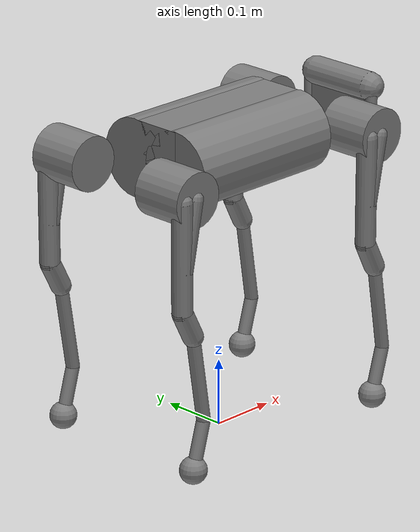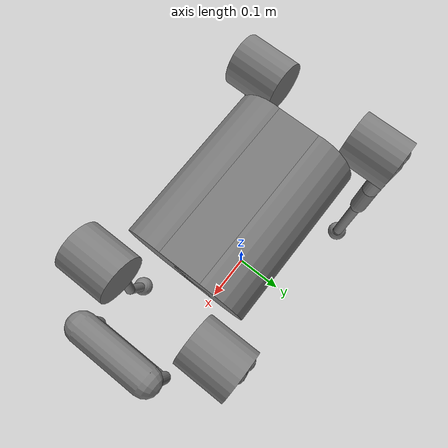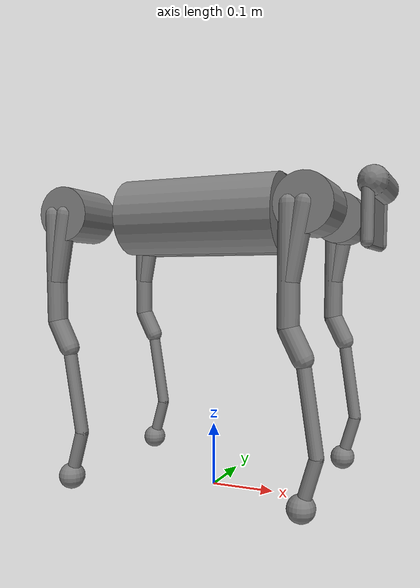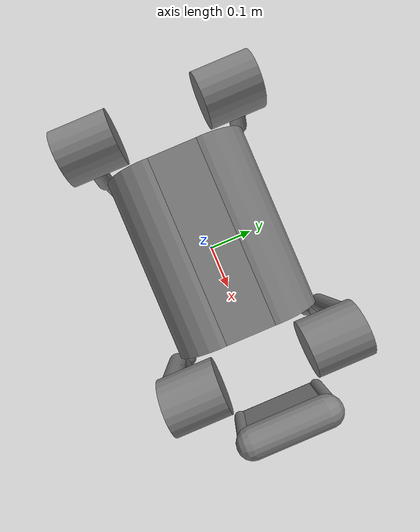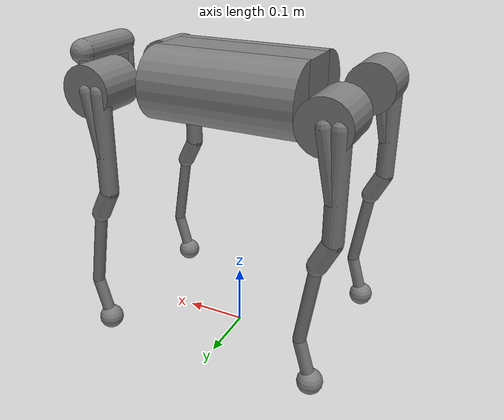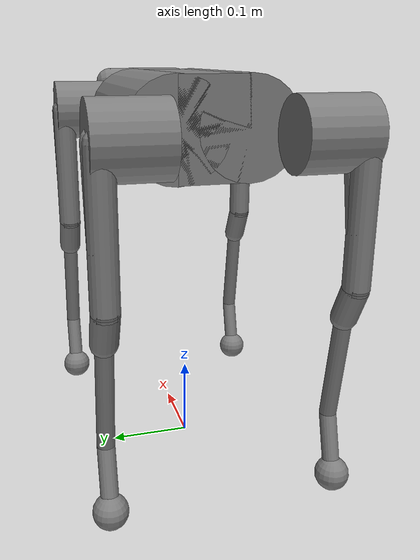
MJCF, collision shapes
<mujoco model="a1">
  <compiler angle="radian" meshdir="assets" texturedir="assets" autolimits="true"/>

  <option cone="elliptic" impratio="100"/>

  <default>
    <default class="a1">
      <geom friction="0.6" margin="0.001"/>
      <joint axis="0 1 0" damping="2" armature="0.01" frictionloss="0.2"/>
      <default class="abduction">
        <joint axis="1 0 0" damping="1" range="-0.802851 0.802851"/>
        <position ctrlrange="-0.802851 0.802851"/>
      </default>
      <default class="hip">
        <joint range="-1.0472 4.18879"/>
        <position ctrlrange="-1.0472 4.18879"/>
      </default>
      <default class="knee">
        <joint range="-2.69653 -0.916298"/>
        <position ctrlrange="-2.69653 -0.916298"/>
      </default>
      <default class="visual">
        <geom type="mesh" contype="0" conaffinity="0" group="2" material="dark"/>
      </default>
      <default class="collision">
        <geom group="3" type="capsule"/>
        <default class="hip_left">
          <geom size="0.04 0.04" quat="1 1 0 0" type="cylinder" pos="0 0.055 0"/>
        </default>
        <default class="hip_right">
          <geom size="0.04 0.04" quat="1 1 0 0" type="cylinder" pos="0 -0.055 0"/>
        </default>
        <default class="thigh1">
          <geom size="0.015" fromto="-0.02 0 0 -0.02 0 -0.16"/>
        </default>
        <default class="thigh2">
          <geom size="0.015" fromto="0 0 0 -0.02 0 -0.1"/>
        </default>
        <default class="thigh3">
          <geom size="0.015" fromto="-0.02 0 -0.16 0 0 -0.2"/>
        </default>
        <default class="calf1">
          <geom size="0.01" fromto="0 0 0 0.02 0 -0.13"/>
        </default>
        <default class="calf2">
          <geom size="0.01" fromto="0.02 0 -0.13 0 0 -0.2"/>
        </default>
        <default class="foot">
          <geom type="sphere" size="0.02" pos="0 0 -0.2" priority="1" solimp="0.015 1 0.02" condim="6"
            friction="0.8 0.02 0.01"/>
        </default>
      </default>
    </default>
  </default>

  <asset>
    <material name="dark" specular="0" shininess="0.25" rgba="0.2 0.2 0.2 1"/>
    <texture type="2d" name="trunk_A1" file="trunk_A1.png"/>
    <material name="carbonfibre" texture="trunk_A1" specular="0" shininess="0.25"/>

    <mesh class="a1" file="calf.obj"/>
    <mesh class="a1" file="hip.obj"/>
    <mesh class="a1" file="thigh.obj"/>
    <mesh class="a1" file="thigh_mirror.obj"/>
    <mesh class="a1" file="trunk.obj"/>
  </asset>

  <worldbody>
    <light name="spotlight" mode="targetbodycom" target="trunk" pos="0 -1 2"/>
    <body name="trunk" pos="0 0 0.43" childclass="a1">
      <freejoint/>
      <inertial mass="4.713" pos="0 0.0041 -0.0005"
        fullinertia="0.0158533 0.0377999 0.0456542 -3.66e-05 -6.11e-05 -2.75e-05"/>

      <geom class="visual" mesh="trunk" material="carbonfibre"/>

      <geom class="collision" size="0.125 0.04 0.057" type="box"/>
      <geom class="collision" quat="1 0 1 0" pos="0 -0.04 0" size="0.058 0.125" type="cylinder"/>
      <geom class="collision" quat="1 0 1 0" pos="0 +0.04 0" size="0.058 0.125" type="cylinder"/>
      <geom class="collision" pos="0.25 0 0" size="0.005 0.06 0.05" type="box"/>
      <geom class="collision" pos="0.25 0.06 -0.01" size="0.009 0.035"/>
      <geom class="collision" pos="0.25 -0.06 -0.01" size="0.009 0.035"/>
      <geom class="collision" pos="0.25 0 -0.05" size="0.005 0.06" quat="1 1 0 0"/>
      <geom class="collision" pos="0.255 0 0.0355" size="0.021 0.052" quat="1 1 0 0"/>

      <site name="imu" pos="0 0 0" size="0.01"/>

      <body name="FR_hip" pos="0.183 -0.047 0">
        <inertial mass="0.696" pos="-0.003311 -0.000635 3.1e-05" quat="0.507528 0.506268 0.491507 0.494499"
          diaginertia="0.000807752 0.00055293 0.000468983"/>
        <joint class="abduction" name="FR_hip_joint"/>
        <geom class="visual" mesh="hip" quat="0 1 0 0"/>
        <geom class="hip_right"/>
        <body name="FR_thigh" pos="0 -0.08505 0">
          <inertial mass="1.013" pos="-0.003237 0.022327 -0.027326" quat="0.999125 -0.00256393 -0.0409531 -0.00806091"
            diaginertia="0.00555739 0.00513936 0.00133944"/>
          <joint class="hip" name="FR_thigh_joint"/>
          <geom class="visual" mesh="thigh_mirror"/>
          <geom class="thigh1"/>
          <geom class="thigh2"/>
          <geom class="thigh3"/>
          <body name="FR_calf" pos="0 0 -0.2">
            <inertial mass="0.226" pos="0.00472659 0 -0.131975" quat="0.706886 0.017653 0.017653 0.706886"
              diaginertia="0.00340344 0.00339393 3.54834e-05"/>
            <joint class="knee" name="FR_calf_joint"/>
            <geom class="visual" mesh="calf"/>
            <geom class="calf1"/>
            <geom class="calf2"/>
            <geom class="foot"/>

            <site name="FR_foot_site" pos="0 0 -0.2" size="0.02"/>

          </body>
        </body>
      </body>
      <body name="FL_hip" pos="0.183 0.047 0">
        <inertial mass="0.696" pos="-0.003311 0.000635 3.1e-05" quat="0.494499 0.491507 0.506268 0.507528"
          diaginertia="0.000807752 0.00055293 0.000468983"/>
        <joint class="abduction" name="FL_hip_joint"/>
        <geom class="visual" mesh="hip"/>
        <geom class="hip_left"/>
        <geom class="collision" size="0.04 0.04" pos="0 0.055 0" quat="1 1 0 0" type="cylinder"/>
        <body name="FL_thigh" pos="0 0.08505 0">
          <inertial mass="1.013" pos="-0.003237 -0.022327 -0.027326" quat="0.999125 0.00256393 -0.0409531 0.00806091"
            diaginertia="0.00555739 0.00513936 0.00133944"/>
          <joint class="hip" name="FL_thigh_joint"/>
          <geom class="visual" mesh="thigh"/>
          <geom class="thigh1"/>
          <geom class="thigh2"/>
          <geom class="thigh3"/>

          <body name="FL_calf" pos="0 0 -0.2">
            <inertial mass="0.226" pos="0.00472659 0 -0.131975" quat="0.706886 0.017653 0.017653 0.706886"
              diaginertia="0.00340344 0.00339393 3.54834e-05"/>
            <joint class="knee" name="FL_calf_joint"/>

            <geom class="visual" mesh="calf"/>
            <geom class="calf1"/>
            <geom class="calf2"/>
            <geom class="foot"/>

            <site name="FL_foot_site" pos="0 0 -0.2" size="0.02"/>

          </body>
        </body>
      </body>
      <body name="RR_hip" pos="-0.183 -0.047 0">
        <inertial mass="0.696" pos="0.003311 -0.000635 3.1e-05" quat="0.491507 0.494499 0.507528 0.506268"
          diaginertia="0.000807752 0.00055293 0.000468983"/>
        <joint class="abduction" name="RR_hip_joint"/>
        <geom class="visual" quat="0 0 0 -1" mesh="hip"/>
        <geom class="hip_right"/>
        <body name="RR_thigh" pos="0 -0.08505 0">
          <inertial mass="1.013" pos="-0.003237 0.022327 -0.027326" quat="0.999125 -0.00256393 -0.0409531 -0.00806091"
            diaginertia="0.00555739 0.00513936 0.00133944"/>
          <joint class="hip" name="RR_thigh_joint"/>
          <geom class="visual" mesh="thigh_mirror"/>
          <geom class="thigh1"/>
          <geom class="thigh2"/>
          <geom class="thigh3"/>
          <body name="RR_calf" pos="0 0 -0.2">
            <inertial mass="0.226" pos="0.00472659 0 -0.131975" quat="0.706886 0.017653 0.017653 0.706886"
              diaginertia="0.00340344 0.00339393 3.54834e-05"/>
            <joint class="knee" name="RR_calf_joint"/>
            <geom class="visual" mesh="calf"/>
            <geom class="calf1"/>
            <geom class="calf2"/>
            <geom class="foot"/>

            <site name="RR_foot_site" pos="0 0 -0.2" size="0.02"/>

          </body>
        </body>
      </body>
      <body name="RL_hip" pos="-0.183 0.047 0">
        <inertial mass="0.696" pos="0.003311 0.000635 3.1e-05" quat="0.506268 0.507528 0.494499 0.491507"
          diaginertia="0.000807752 0.00055293 0.000468983"/>
        <joint class="abduction" name="RL_hip_joint"/>
        <geom class="visual" quat="0 0 1 0" mesh="hip"/>
        <geom class="hip_left"/>
        <body name="RL_thigh" pos="0 0.08505 0">
          <inertial mass="1.013" pos="-0.003237 -0.022327 -0.027326" quat="0.999125 0.00256393 -0.0409531 0.00806091"
            diaginertia="0.00555739 0.00513936 0.00133944"/>
          <joint class="hip" name="RL_thigh_joint"/>
          <geom class="visual" mesh="thigh"/>
          <geom class="thigh1"/>
          <geom class="thigh2"/>
          <geom class="thigh3"/>
          <body name="RL_calf" pos="0 0 -0.2">
            <inertial mass="0.226" pos="0.00472659 0 -0.131975" quat="0.706886 0.017653 0.017653 0.706886"
              diaginertia="0.00340344 0.00339393 3.54834e-05"/>
            <joint class="knee" name="RL_calf_joint"/>
            <geom class="visual" mesh="calf"/>
            <geom class="calf1"/>
            <geom class="calf2"/>
            <geom class="foot"/>

            <site name="RL_foot_site" pos="0 0 -0.2" size="0.02"/>

          </body>
        </body>
      </body>
    </body>
  </worldbody>

  <actuator>
    <motor name="FR_hip" joint="FR_hip_joint"     ctrlrange="-33.5 33.5" ctrllimited="true"/>
    <motor name="FR_thigh" joint="FR_thigh_joint"   ctrlrange="-33.5 33.5" ctrllimited="true"/>
    <motor name="FR_calf" joint="FR_calf_joint"    ctrlrange="-33.5 33.5" ctrllimited="true"/>
    <motor name="FL_hip" joint="FL_hip_joint"     ctrlrange="-33.5 33.5" ctrllimited="true"/>
    <motor name="FL_thigh" joint="FL_thigh_joint"   ctrlrange="-33.5 33.5" ctrllimited="true"/>
    <motor name="FL_calf" joint="FL_calf_joint"    ctrlrange="-33.5 33.5" ctrllimited="true"/>
    <motor name="RR_hip" joint="RR_hip_joint"     ctrlrange="-33.5 33.5" ctrllimited="true"/>
    <motor name="RR_thigh" joint="RR_thigh_joint"   ctrlrange="-33.5 33.5" ctrllimited="true"/>
    <motor name="RR_calf" joint="RR_calf_joint"    ctrlrange="-33.5 33.5" ctrllimited="true"/>
    <motor name="RL_hip" joint="RL_hip_joint"     ctrlrange="-33.5 33.5" ctrllimited="true"/>
    <motor name="RL_thigh" joint="RL_thigh_joint"   ctrlrange="-33.5 33.5" ctrllimited="true"/>
    <motor name="RL_calf" joint="RL_calf_joint"    ctrlrange="-33.5 33.5" ctrllimited="true"/>
  </actuator>

  <sensor>
    <jointpos name="FR_hip_joint_pos" joint="FR_hip_joint" noise="0.01"/>
    <jointpos name="FR_thigh_joint_pos" joint="FR_thigh_joint" noise="0.01"/>
    <jointpos name="FR_calf_joint_pos" joint="FR_calf_joint" noise="0.01"/>
    <jointpos name="FL_hip_joint_pos" joint="FL_hip_joint" noise="0.01"/>
    <jointpos name="FL_thigh_joint_pos" joint="FL_thigh_joint" noise="0.01"/>
    <jointpos name="FL_calf_joint_pos" joint="FL_calf_joint" noise="0.01"/>
    <jointpos name="RR_hip_joint_pos" joint="RR_hip_joint" noise="0.01"/>
    <jointpos name="RR_thigh_joint_pos" joint="RR_thigh_joint" noise="0.01"/>
    <jointpos name="RR_calf_joint_pos" joint="RR_calf_joint" noise="0.01"/>
    <jointpos name="RL_hip_joint_pos" joint="RL_hip_joint" noise="0.01"/>
    <jointpos name="RL_thigh_joint_pos" joint="RL_thigh_joint" noise="0.01"/>
    <jointpos name="RL_calf_joint_pos" joint="RL_calf_joint" noise="0.01"/>

    <jointvel name="FR_hip_joint_vel" joint="FR_hip_joint" noise="0.01"/>
    <jointvel name="FR_thigh_joint_vel" joint="FR_thigh_joint" noise="0.01"/>
    <jointvel name="FR_calf_joint_vel" joint="FR_calf_joint" noise="0.01"/>
    <jointvel name="FL_hip_joint_vel" joint="FL_hip_joint" noise="0.01"/>
    <jointvel name="FL_thigh_joint_vel" joint="FL_thigh_joint" noise="0.01"/>
    <jointvel name="FL_calf_joint_vel" joint="FL_calf_joint" noise="0.01"/>
    <jointvel name="RR_hip_joint_vel" joint="RR_hip_joint" noise="0.01"/>
    <jointvel name="RR_thigh_joint_vel" joint="RR_thigh_joint" noise="0.01"/>
    <jointvel name="RR_calf_joint_vel" joint="RR_calf_joint" noise="0.01"/>
    <jointvel name="RL_hip_joint_vel" joint="RL_hip_joint" noise="0.01"/>
    <jointvel name="RL_thigh_joint_vel" joint="RL_thigh_joint" noise="0.01"/>
    <jointvel name="RL_calf_joint_vel" joint="RL_calf_joint" noise="0.01"/>

    <jointactuatorfrc name="FR_hip_joint_torque" joint="FR_hip_joint" noise="0.01"/>
    <jointactuatorfrc name="FR_thigh_joint_torque" joint="FR_thigh_joint" noise="0.01"/>
    <jointactuatorfrc name="FR_calf_joint_torque" joint="FR_calf_joint" noise="0.01"/>
    <jointactuatorfrc name="FL_hip_joint_torque" joint="FL_hip_joint" noise="0.01"/>
    <jointactuatorfrc name="FL_thigh_joint_torque" joint="FL_thigh_joint" noise="0.01"/>
    <jointactuatorfrc name="FL_calf_joint_torque" joint="FL_calf_joint" noise="0.01"/>
    <jointactuatorfrc name="RR_hip_joint_torque" joint="RR_hip_joint" noise="0.01"/>
    <jointactuatorfrc name="RR_thigh_joint_torque" joint="RR_thigh_joint" noise="0.01"/>
    <jointactuatorfrc name="RR_calf_joint_torque" joint="RR_calf_joint" noise="0.01"/>
    <jointactuatorfrc name="RL_hip_joint_torque" joint="RL_hip_joint" noise="0.01"/>
    <jointactuatorfrc name="RL_thigh_joint_torque" joint="RL_thigh_joint" noise="0.01"/>
    <jointactuatorfrc name="RL_calf_joint_torque" joint="RL_calf_joint" noise="0.01"/>

    <framequat name="imu_quat" objtype="site" objname="imu" noise="0.01"/>
    <gyro name="imu_gyro" site="imu" noise="0.01"/>
    <accelerometer name="imu_acc" site="imu" noise="0.01"/>
    <framepos name="frame_pos" objtype="site" objname="imu" noise="0.01"/>
    <framelinvel name="frame_vel" objtype="site" objname="imu" noise="0.01"/>

    <touch name="FR_foot_force" site="FR_foot_site" noise="0.01"/>
    <touch name="FL_foot_force" site="FL_foot_site" noise="0.01"/>
    <touch name="RR_foot_force" site="RR_foot_site" noise="0.01"/>
    <touch name="RL_foot_force" site="RL_foot_site" noise="0.01"/>
  </sensor>

  <keyframe>
    <key name="home" qpos="0 0 0.27 1 0 0 0 0 0.9 -1.8 0 0.9 -1.8 0 0.9 -1.8 0 0.9 -1.8"
      ctrl="0 0.9 -1.8 0 0.9 -1.8 0 0.9 -1.8 0 0.9 -1.8"/>
  </keyframe>
</mujoco>
